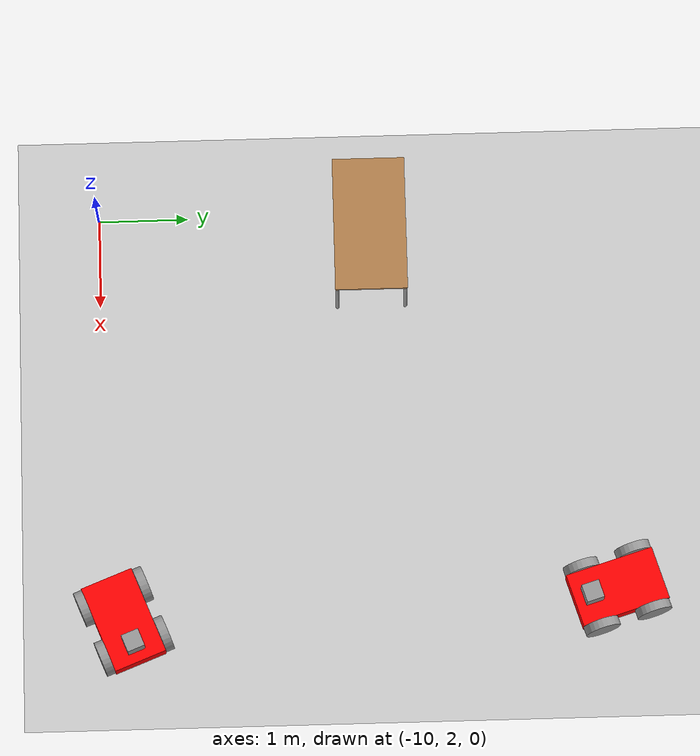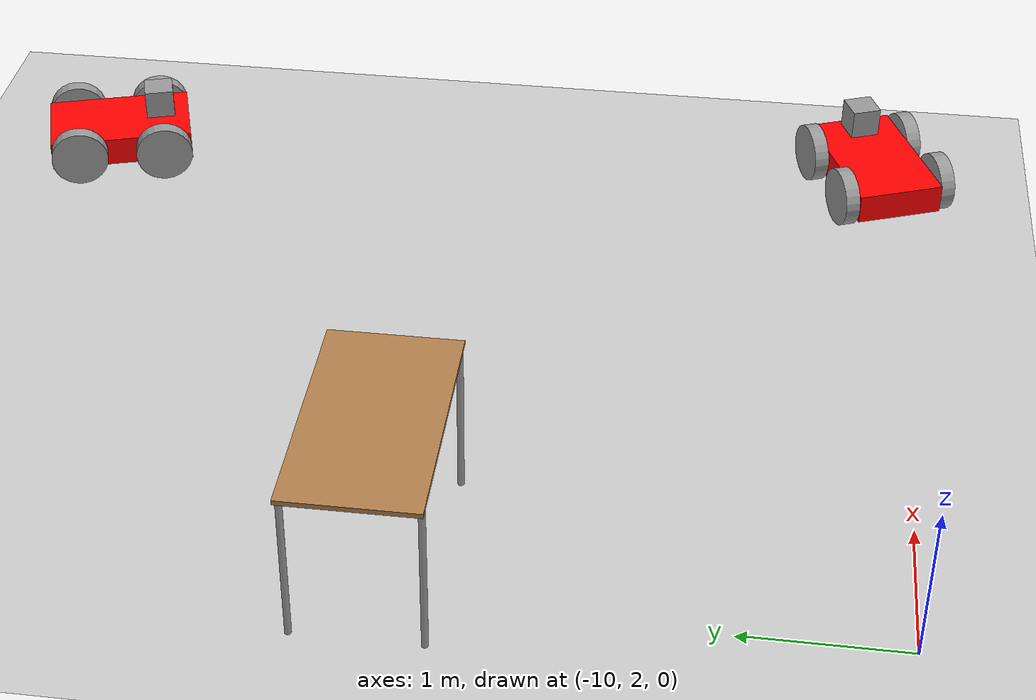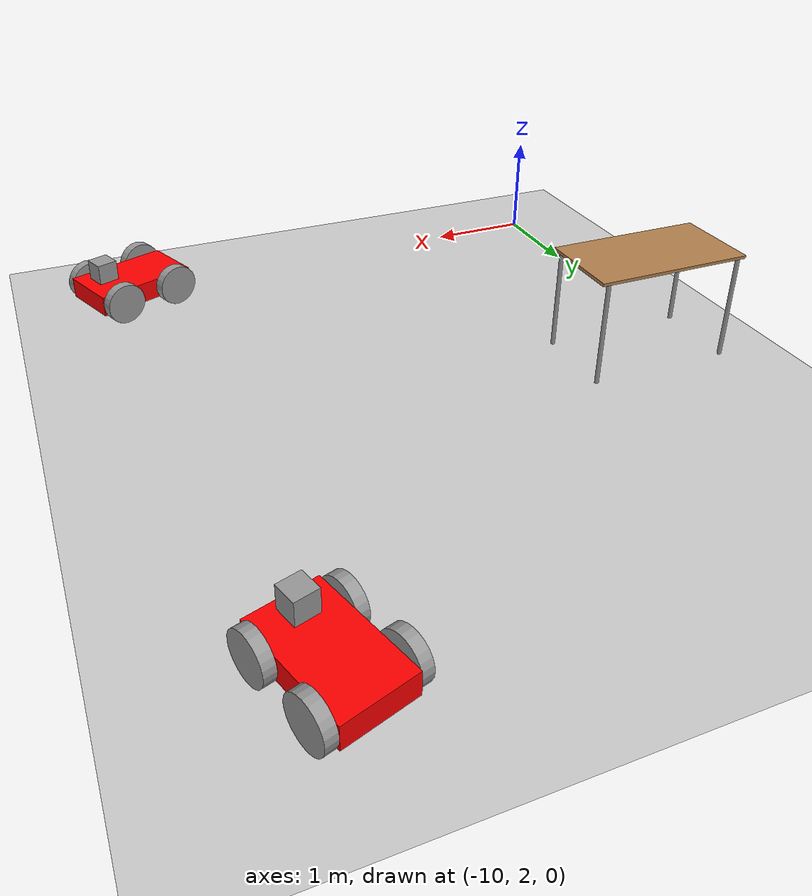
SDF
<sdf version="1.7">
 <world name="default">
  <model name="ground_plane">
   <static>1</static>
   <link name="link">
    <collision name="collision">
     <geometry><plane><normal>0 0 1</normal><size>100 100</size></plane></geometry>
     <surface>
      <contact><collide_bitmask>65535</collide_bitmask></contact>
      <friction><ode><mu>100</mu><mu2>50</mu2></ode></friction>
     </surface>
    </collision>
    <visual name="visual">
     <cast_shadows>0</cast_shadows>
     <geometry><plane><normal>0 0 1</normal><size>100 100</size></plane></geometry>
     <material>
      <script><uri>file://media/materials/scripts/gazebo.material</uri><name>Gazebo/Grey</name></script>
     </material>
    </visual>
   </link>
  </model>
  <model name="table_0">
   <static>1</static>
   <link name="link">
    <collision name="surface">
     <pose>0 0 1 0 -0 0</pose>
     <geometry><box><size>1.5 0.8 0.03</size></box></geometry>
     <surface><friction><ode><mu>0.6</mu><mu2>0.6</mu2></ode></friction></surface>
    </collision>
    <visual name="visual1">
     <pose>0 0 1 0 -0 0</pose>
     <geometry><box><size>1.5 0.8 0.03</size></box></geometry>
     <material>
      <script><uri>file://media/materials/scripts/gazebo.material</uri><name>Gazebo/Wood</name></script>
     </material>
    </visual>
    <collision name="front_left_leg">
     <pose>0.68 0.38 0.5 0 -0 0</pose>
     <geometry><cylinder><radius>0.02</radius><length>1</length></cylinder></geometry>
    </collision>
    <visual name="front_left_leg">
     <pose>0.68 0.38 0.5 0 -0 0</pose>
     <geometry><cylinder><radius>0.02</radius><length>1</length></cylinder></geometry>
     <material>
      <script><uri>file://media/materials/scripts/gazebo.material</uri><name>Gazebo/Grey</name></script>
     </material>
    </visual>
    <collision name="front_right_leg">
     <pose>0.68 -0.38 0.5 0 -0 0</pose>
     <geometry><cylinder><radius>0.02</radius><length>1</length></cylinder></geometry>
    </collision>
    <visual name="front_right_leg">
     <pose>0.68 -0.38 0.5 0 -0 0</pose>
     <geometry><cylinder><radius>0.02</radius><length>1</length></cylinder></geometry>
     <material>
      <script><uri>file://media/materials/scripts/gazebo.material</uri><name>Gazebo/Grey</name></script>
     </material>
    </visual>
    <collision name="back_right_leg">
     <pose>-0.68 -0.38 0.5 0 -0 0</pose>
     <geometry><cylinder><radius>0.02</radius><length>1</length></cylinder></geometry>
    </collision>
    <visual name="back_right_leg">
     <pose>-0.68 -0.38 0.5 0 -0 0</pose>
     <geometry><cylinder><radius>0.02</radius><length>1</length></cylinder></geometry>
     <material>
      <script><uri>file://media/materials/scripts/gazebo.material</uri><name>Gazebo/Grey</name></script>
     </material>
    </visual>
    <collision name="back_left_leg">
     <pose>-0.68 0.38 0.5 0 -0 0</pose>
     <geometry><cylinder><radius>0.02</radius><length>1</length></cylinder></geometry>
    </collision>
    <visual name="back_left_leg">
     <pose>-0.68 0.38 0.5 0 -0 0</pose>
     <geometry><cylinder><radius>0.02</radius><length>1</length></cylinder></geometry>
     <material>
      <script><uri>file://media/materials/scripts/gazebo.material</uri><name>Gazebo/Grey</name></script>
     </material>
    </visual>
   </link>
   <pose>-9.61632 5.04374 0 0 -0 0</pose>
  </model>
  <model name="Normal_Turtlebot">
   <link name="link_0">
    <inertial>
     <mass>1</mass>
     <inertia>
      <ixx>0.166667</ixx>
      <ixy>0</ixy>
      <ixz>0</ixz>
      <iyy>0.166667</iyy>
      <iyz>0</iyz>
      <izz>0.166667</izz>
     </inertia>
    </inertial>
    <pose>0.016667 0 -0.034708 0 -0 0</pose>
    <visual name="visual">
     <geometry><box><size>1 0.6 0.2</size></box></geometry>
     <material>
      <lighting>1</lighting>
      <script><uri>file://media/materials/scripts/gazebo.material</uri><name>Gazebo/Grey</name></script>
      <shader type="pixel"><normal_map>__default__</normal_map></shader>
      <ambient>1 0 0 1</ambient>
      <diffuse>1 0 0 1</diffuse>
      <specular>0.1 0.1 0.1 1</specular>
      <emissive>0 0 0 1</emissive>
     </material>
    </visual>
    <collision name="collision">
     <geometry><box><size>1 0.6 0.2</size></box></geometry>
     <surface>
      <friction>
       <ode><mu>1</mu><mu2>1</mu2><fdir1>0 0 0</fdir1><slip1>0</slip1><slip2>0</slip2></ode>
       <torsional>
        <coefficient>1</coefficient>
        <patch_radius>0</patch_radius>
        <surface_radius>0</surface_radius>
        <use_patch_radius>1</use_patch_radius>
        <ode><slip>0</slip></ode>
       </torsional>
      </friction>
      <bounce><restitution_coefficient>0</restitution_coefficient><threshold>1e+06</threshold></bounce>
      <contact>
       <collide_without_contact>0</collide_without_contact>
       <collide_without_contact_bitmask>1</collide_without_contact_bitmask>
       <collide_bitmask>1</collide_bitmask>
       <ode>
        <soft_cfm>0</soft_cfm>
        <soft_erp>0.2</soft_erp>
        <kp>1e+13</kp>
        <kd>1</kd>
        <max_vel>0.01</max_vel>
        <min_depth>0</min_depth>
       </ode>
       <bullet>
        <split_impulse>1</split_impulse>
        <split_impulse_penetration_threshold>-0.01</split_impulse_penetration_threshold>
        <soft_cfm>0</soft_cfm>
        <soft_erp>0.2</soft_erp>
        <kp>1e+13</kp>
        <kd>1</kd>
       </bullet>
      </contact>
     </surface>
    </collision>
   </link>
   <link name="link_1">
    <inertial>
     <mass>1</mass>
     <inertia><ixx>0.145833</ixx><ixy>0</ixy><ixz>0</ixz><iyy>0.145833</iyy><iyz>0</iyz><izz>0.125</izz></inertia>
    </inertial>
    <pose>-0.283333 -0.350019 -0.014712 1.5707 -0 0</pose>
    <visual name="visual">
     <geometry><cylinder><radius>0.2</radius><length>0.1</length></cylinder></geometry>
     <material>
      <lighting>1</lighting>
      <script><uri>file://media/materials/scripts/gazebo.material</uri><name>Gazebo/Grey</name></script>
      <shader type="pixel"><normal_map>__default__</normal_map></shader>
      <ambient>0.3 0.3 0.3 1</ambient>
      <diffuse>0.7 0.7 0.7 1</diffuse>
      <specular>0.01 0.01 0.01 1</specular>
      <emissive>0 0 0 1</emissive>
     </material>
    </visual>
    <collision name="collision">
     <geometry><cylinder><radius>0.2</radius><length>0.1</length></cylinder></geometry>
     <surface>
      <friction>
       <ode><mu>1</mu><mu2>1</mu2><fdir1>0 0 0</fdir1><slip1>0</slip1><slip2>0</slip2></ode>
       <torsional>
        <coefficient>1</coefficient>
        <patch_radius>0</patch_radius>
        <surface_radius>0</surface_radius>
        <use_patch_radius>1</use_patch_radius>
        <ode><slip>0</slip></ode>
       </torsional>
      </friction>
      <bounce><restitution_coefficient>0</restitution_coefficient><threshold>1e+06</threshold></bounce>
      <contact>
       <collide_without_contact>0</collide_without_contact>
       <collide_without_contact_bitmask>1</collide_without_contact_bitmask>
       <collide_bitmask>1</collide_bitmask>
       <ode>
        <soft_cfm>0</soft_cfm>
        <soft_erp>0.2</soft_erp>
        <kp>1e+13</kp>
        <kd>1</kd>
        <max_vel>0.01</max_vel>
        <min_depth>0</min_depth>
       </ode>
       <bullet>
        <split_impulse>1</split_impulse>
        <split_impulse_penetration_threshold>-0.01</split_impulse_penetration_threshold>
        <soft_cfm>0</soft_cfm>
        <soft_erp>0.2</soft_erp>
        <kp>1e+13</kp>
        <kd>1</kd>
       </bullet>
      </contact>
     </surface>
    </collision>
   </link>
   <link name="link_1_clone">
    <inertial>
     <mass>1</mass>
     <inertia><ixx>0.145833</ixx><ixy>0</ixy><ixz>0</ixz><iyy>0.145833</iyy><iyz>0</iyz><izz>0.125</izz></inertia>
    </inertial>
    <pose>-0.283333 0.350019 -0.034708 1.5707 -0 0</pose>
    <visual name="visual">
     <geometry><cylinder><radius>0.2</radius><length>0.1</length></cylinder></geometry>
     <material>
      <lighting>1</lighting>
      <script><uri>file://media/materials/scripts/gazebo.material</uri><name>Gazebo/Grey</name></script>
      <shader type="pixel"><normal_map>__default__</normal_map></shader>
      <ambient>0.3 0.3 0.3 1</ambient>
      <diffuse>0.7 0.7 0.7 1</diffuse>
      <specular>0.01 0.01 0.01 1</specular>
      <emissive>0 0 0 1</emissive>
     </material>
    </visual>
    <collision name="collision">
     <geometry><cylinder><radius>0.2</radius><length>0.1</length></cylinder></geometry>
     <surface>
      <friction>
       <ode><mu>1</mu><mu2>1</mu2><fdir1>0 0 0</fdir1><slip1>0</slip1><slip2>0</slip2></ode>
       <torsional>
        <coefficient>1</coefficient>
        <patch_radius>0</patch_radius>
        <surface_radius>0</surface_radius>
        <use_patch_radius>1</use_patch_radius>
        <ode><slip>0</slip></ode>
       </torsional>
      </friction>
      <bounce><restitution_coefficient>0</restitution_coefficient><threshold>1e+06</threshold></bounce>
      <contact>
       <collide_without_contact>0</collide_without_contact>
       <collide_without_contact_bitmask>1</collide_without_contact_bitmask>
       <collide_bitmask>1</collide_bitmask>
       <ode>
        <soft_cfm>0</soft_cfm>
        <soft_erp>0.2</soft_erp>
        <kp>1e+13</kp>
        <kd>1</kd>
        <max_vel>0.01</max_vel>
        <min_depth>0</min_depth>
       </ode>
       <bullet>
        <split_impulse>1</split_impulse>
        <split_impulse_penetration_threshold>-0.01</split_impulse_penetration_threshold>
        <soft_cfm>0</soft_cfm>
        <soft_erp>0.2</soft_erp>
        <kp>1e+13</kp>
        <kd>1</kd>
       </bullet>
      </contact>
     </surface>
    </collision>
   </link>
   <link name="link_1_clone_0">
    <inertial>
     <mass>1</mass>
     <inertia><ixx>0.145833</ixx><ixy>0</ixy><ixz>0</ixz><iyy>0.145833</iyy><iyz>0</iyz><izz>0.125</izz></inertia>
    </inertial>
    <pose>0.316667 0.350019 -0.034708 1.5707 -0 0</pose>
    <visual name="visual">
     <geometry><cylinder><radius>0.2</radius><length>0.1</length></cylinder></geometry>
     <material>
      <lighting>1</lighting>
      <script><uri>file://media/materials/scripts/gazebo.material</uri><name>Gazebo/Grey</name></script>
      <shader type="pixel"><normal_map>__default__</normal_map></shader>
      <ambient>0.3 0.3 0.3 1</ambient>
      <diffuse>0.7 0.7 0.7 1</diffuse>
      <specular>0.01 0.01 0.01 1</specular>
      <emissive>0 0 0 1</emissive>
     </material>
    </visual>
    <collision name="collision">
     <geometry><cylinder><radius>0.2</radius><length>0.1</length></cylinder></geometry>
     <surface>
      <friction>
       <ode><mu>1</mu><mu2>1</mu2><fdir1>0 0 0</fdir1><slip1>0</slip1><slip2>0</slip2></ode>
       <torsional>
        <coefficient>1</coefficient>
        <patch_radius>0</patch_radius>
        <surface_radius>0</surface_radius>
        <use_patch_radius>1</use_patch_radius>
        <ode><slip>0</slip></ode>
       </torsional>
      </friction>
      <bounce><restitution_coefficient>0</restitution_coefficient><threshold>1e+06</threshold></bounce>
      <contact>
       <collide_without_contact>0</collide_without_contact>
       <collide_without_contact_bitmask>1</collide_without_contact_bitmask>
       <collide_bitmask>1</collide_bitmask>
       <ode>
        <soft_cfm>0</soft_cfm>
        <soft_erp>0.2</soft_erp>
        <kp>1e+13</kp>
        <kd>1</kd>
        <max_vel>0.01</max_vel>
        <min_depth>0</min_depth>
       </ode>
       <bullet>
        <split_impulse>1</split_impulse>
        <split_impulse_penetration_threshold>-0.01</split_impulse_penetration_threshold>
        <soft_cfm>0</soft_cfm>
        <soft_erp>0.2</soft_erp>
        <kp>1e+13</kp>
        <kd>1</kd>
       </bullet>
      </contact>
     </surface>
    </collision>
   </link>
   <link name="link_1_clone_1">
    <inertial>
     <mass>1</mass>
     <inertia><ixx>0.145833</ixx><ixy>0</ixy><ixz>0</ixz><iyy>0.145833</iyy><iyz>0</iyz><izz>0.125</izz></inertia>
    </inertial>
    <pose>0.316667 -0.350019 -0.034708 1.5707 -0 0</pose>
    <visual name="visual">
     <geometry><cylinder><radius>0.2</radius><length>0.1</length></cylinder></geometry>
     <material>
      <lighting>1</lighting>
      <script><uri>file://media/materials/scripts/gazebo.material</uri><name>Gazebo/Grey</name></script>
      <shader type="pixel"><normal_map>__default__</normal_map></shader>
      <ambient>0.3 0.3 0.3 1</ambient>
      <diffuse>0.7 0.7 0.7 1</diffuse>
      <specular>0.01 0.01 0.01 1</specular>
      <emissive>0 0 0 1</emissive>
     </material>
    </visual>
    <collision name="collision">
     <geometry><cylinder><radius>0.2</radius><length>0.1</length></cylinder></geometry>
     <surface>
      <friction>
       <ode><mu>1</mu><mu2>1</mu2><fdir1>0 0 0</fdir1><slip1>0</slip1><slip2>0</slip2></ode>
       <torsional>
        <coefficient>1</coefficient>
        <patch_radius>0</patch_radius>
        <surface_radius>0</surface_radius>
        <use_patch_radius>1</use_patch_radius>
        <ode><slip>0</slip></ode>
       </torsional>
      </friction>
      <bounce><restitution_coefficient>0</restitution_coefficient><threshold>1e+06</threshold></bounce>
      <contact>
       <collide_without_contact>0</collide_without_contact>
       <collide_without_contact_bitmask>1</collide_without_contact_bitmask>
       <collide_bitmask>1</collide_bitmask>
       <ode>
        <soft_cfm>0</soft_cfm>
        <soft_erp>0.2</soft_erp>
        <kp>1e+13</kp>
        <kd>1</kd>
        <max_vel>0.01</max_vel>
        <min_depth>0</min_depth>
       </ode>
       <bullet>
        <split_impulse>1</split_impulse>
        <split_impulse_penetration_threshold>-0.01</split_impulse_penetration_threshold>
        <soft_cfm>0</soft_cfm>
        <soft_erp>0.2</soft_erp>
        <kp>1e+13</kp>
        <kd>1</kd>
       </bullet>
      </contact>
     </surface>
    </collision>
   </link>
   <link name="link_2">
    <inertial>
     <mass>0.0103468</mass>
     <inertia>
      <ixx>7.075e-05</ixx>
      <ixy>0</ixy>
      <ixz>0</ixz>
      <iyy>9.168e-05</iyy>
      <iyz>0</iyz>
      <izz>8.896e-05</izz>
     </inertia>
    </inertial>
    <pose>0.316667 2.2e-05 0.205409 0 -0 0</pose>
    <visual name="visual">
     <geometry><box><size>0.2 0.2 0.2</size></box></geometry>
     <material>
      <lighting>1</lighting>
      <script><uri>file://media/materials/scripts/gazebo.material</uri><name>Gazebo/Grey</name></script>
      <shader type="pixel"><normal_map>__default__</normal_map></shader>
      <ambient>0.3 0.3 0.3 1</ambient>
      <diffuse>0.7 0.7 0.7 1</diffuse>
      <specular>0.01 0.01 0.01 1</specular>
      <emissive>0 0 0 1</emissive>
     </material>
    </visual>
    <collision name="collision">
     <geometry><box><size>0.2 0.2 0.2</size></box></geometry>
     <surface>
      <friction>
       <ode><mu>1</mu><mu2>1</mu2><fdir1>0 0 0</fdir1><slip1>0</slip1><slip2>0</slip2></ode>
       <torsional>
        <coefficient>1</coefficient>
        <patch_radius>0</patch_radius>
        <surface_radius>0</surface_radius>
        <use_patch_radius>1</use_patch_radius>
        <ode><slip>0</slip></ode>
       </torsional>
      </friction>
      <bounce><restitution_coefficient>0</restitution_coefficient><threshold>1e+06</threshold></bounce>
      <contact>
       <collide_without_contact>0</collide_without_contact>
       <collide_without_contact_bitmask>1</collide_without_contact_bitmask>
       <collide_bitmask>1</collide_bitmask>
       <ode>
        <soft_cfm>0</soft_cfm>
        <soft_erp>0.2</soft_erp>
        <kp>1e+13</kp>
        <kd>1</kd>
        <max_vel>0.01</max_vel>
        <min_depth>0</min_depth>
       </ode>
       <bullet>
        <split_impulse>1</split_impulse>
        <split_impulse_penetration_threshold>-0.01</split_impulse_penetration_threshold>
        <soft_cfm>0</soft_cfm>
        <soft_erp>0.2</soft_erp>
        <kp>1e+13</kp>
        <kd>1</kd>
       </bullet>
      </contact>
     </surface>
    </collision>
   </link>
   <joint name="link_0_JOINT_0_0" type="fixed">
    <parent>link_0</parent>
    <child>link_2</child>
    <pose>0 0 0 -0.01 0 0</pose>
    <physics>
     <ode><limit><cfm>0</cfm><erp>0.2</erp></limit><suspension><cfm>0</cfm><erp>0.2</erp></suspension></ode>
    </physics>
   </joint>
   <joint name="link_0_JOINT_0" type="revolute">
    <parent>link_0</parent>
    <child>link_1</child>
    <axis>
     <xyz>0 0 1</xyz>
     <limit>
      <lower>-1.79769e+308</lower>
      <upper>1.79769e+308</upper>
      <effort>-1</effort>
      <velocity>-1</velocity>
     </limit>
     <dynamics>
      <spring_reference>0</spring_reference>
      <spring_stiffness>0</spring_stiffness>
      <damping>0</damping>
      <friction>0</friction>
     </dynamics>
    </axis>
    <physics>
     <ode><limit><cfm>0</cfm><erp>0.2</erp></limit><suspension><cfm>0</cfm><erp>0.2</erp></suspension></ode>
    </physics>
   </joint>
   <joint name="link_0_JOINT_1" type="revolute">
    <parent>link_0</parent>
    <child>link_1_clone_1</child>
    <axis>
     <xyz>0 0 1</xyz>
     <limit>
      <lower>-1.79769e+308</lower>
      <upper>1.79769e+308</upper>
      <effort>-1</effort>
      <velocity>-1</velocity>
     </limit>
     <dynamics>
      <spring_reference>0</spring_reference>
      <spring_stiffness>0</spring_stiffness>
      <damping>0</damping>
      <friction>0</friction>
     </dynamics>
    </axis>
    <physics>
     <ode><limit><cfm>0</cfm><erp>0.2</erp></limit><suspension><cfm>0</cfm><erp>0.2</erp></suspension></ode>
    </physics>
   </joint>
   <joint name="link_0_JOINT_2" type="revolute">
    <parent>link_0</parent>
    <child>link_1_clone</child>
    <axis>
     <xyz>0 0 1</xyz>
     <limit>
      <lower>-1.79769e+308</lower>
      <upper>1.79769e+308</upper>
      <effort>-1</effort>
      <velocity>-1</velocity>
     </limit>
     <dynamics>
      <spring_reference>0</spring_reference>
      <spring_stiffness>0</spring_stiffness>
      <damping>0</damping>
      <friction>0</friction>
     </dynamics>
    </axis>
    <physics>
     <ode><limit><cfm>0</cfm><erp>0.2</erp></limit><suspension><cfm>0</cfm><erp>0.2</erp></suspension></ode>
    </physics>
   </joint>
   <joint name="link_0_JOINT_3" type="revolute">
    <parent>link_0</parent>
    <child>link_1_clone_0</child>
    <axis>
     <xyz>0 0 1</xyz>
     <limit>
      <lower>-1.79769e+308</lower>
      <upper>1.79769e+308</upper>
      <effort>-1</effort>
      <velocity>-1</velocity>
     </limit>
     <dynamics>
      <spring_reference>0</spring_reference>
      <spring_stiffness>0</spring_stiffness>
      <damping>0</damping>
      <friction>0</friction>
     </dynamics>
    </axis>
    <physics>
     <ode><limit><cfm>0</cfm><erp>0.2</erp></limit><suspension><cfm>0</cfm><erp>0.2</erp></suspension></ode>
    </physics>
   </joint>
   <static>0</static>
   <pose>-5.38094 2.20899 0.2347 9.8e-05 -0.000117 0.37514</pose>
  </model>
  <model name="Normal_Turtlebot_clone">
   <link name="link_0">
    <inertial>
     <mass>1</mass>
     <inertia>
      <ixx>0.166667</ixx>
      <ixy>0</ixy>
      <ixz>0</ixz>
      <iyy>0.166667</iyy>
      <iyz>0</iyz>
      <izz>0.166667</izz>
     </inertia>
    </inertial>
    <pose>0.016667 0 -0.034708 0 -0 0</pose>
    <visual name="visual">
     <geometry><box><size>1 0.6 0.2</size></box></geometry>
     <material>
      <lighting>1</lighting>
      <script><uri>file://media/materials/scripts/gazebo.material</uri><name>Gazebo/Grey</name></script>
      <shader type="pixel"><normal_map>__default__</normal_map></shader>
      <ambient>1 0 0 1</ambient>
      <diffuse>1 0 0 1</diffuse>
      <specular>0.1 0.1 0.1 1</specular>
      <emissive>0 0 0 1</emissive>
     </material>
    </visual>
    <collision name="collision">
     <geometry><box><size>1 0.6 0.2</size></box></geometry>
     <surface>
      <friction>
       <ode><mu>1</mu><mu2>1</mu2><fdir1>0 0 0</fdir1><slip1>0</slip1><slip2>0</slip2></ode>
       <torsional>
        <coefficient>1</coefficient>
        <patch_radius>0</patch_radius>
        <surface_radius>0</surface_radius>
        <use_patch_radius>1</use_patch_radius>
        <ode><slip>0</slip></ode>
       </torsional>
      </friction>
      <bounce><restitution_coefficient>0</restitution_coefficient><threshold>1e+06</threshold></bounce>
      <contact>
       <collide_without_contact>0</collide_without_contact>
       <collide_without_contact_bitmask>1</collide_without_contact_bitmask>
       <collide_bitmask>1</collide_bitmask>
       <ode>
        <soft_cfm>0</soft_cfm>
        <soft_erp>0.2</soft_erp>
        <kp>1e+13</kp>
        <kd>1</kd>
        <max_vel>0.01</max_vel>
        <min_depth>0</min_depth>
       </ode>
       <bullet>
        <split_impulse>1</split_impulse>
        <split_impulse_penetration_threshold>-0.01</split_impulse_penetration_threshold>
        <soft_cfm>0</soft_cfm>
        <soft_erp>0.2</soft_erp>
        <kp>1e+13</kp>
        <kd>1</kd>
       </bullet>
      </contact>
     </surface>
    </collision>
   </link>
   <link name="link_1">
    <inertial>
     <mass>1</mass>
     <inertia><ixx>0.145833</ixx><ixy>0</ixy><ixz>0</ixz><iyy>0.145833</iyy><iyz>0</iyz><izz>0.125</izz></inertia>
    </inertial>
    <pose>-0.283333 -0.350019 -0.014712 1.5707 -0 0</pose>
    <visual name="visual">
     <geometry><cylinder><radius>0.2</radius><length>0.1</length></cylinder></geometry>
     <material>
      <lighting>1</lighting>
      <script><uri>file://media/materials/scripts/gazebo.material</uri><name>Gazebo/Grey</name></script>
      <shader type="pixel"><normal_map>__default__</normal_map></shader>
      <ambient>0.3 0.3 0.3 1</ambient>
      <diffuse>0.7 0.7 0.7 1</diffuse>
      <specular>0.01 0.01 0.01 1</specular>
      <emissive>0 0 0 1</emissive>
     </material>
    </visual>
    <collision name="collision">
     <geometry><cylinder><radius>0.2</radius><length>0.1</length></cylinder></geometry>
     <surface>
      <friction>
       <ode><mu>1</mu><mu2>1</mu2><fdir1>0 0 0</fdir1><slip1>0</slip1><slip2>0</slip2></ode>
       <torsional>
        <coefficient>1</coefficient>
        <patch_radius>0</patch_radius>
        <surface_radius>0</surface_radius>
        <use_patch_radius>1</use_patch_radius>
        <ode><slip>0</slip></ode>
       </torsional>
      </friction>
      <bounce><restitution_coefficient>0</restitution_coefficient><threshold>1e+06</threshold></bounce>
      <contact>
       <collide_without_contact>0</collide_without_contact>
       <collide_without_contact_bitmask>1</collide_without_contact_bitmask>
       <collide_bitmask>1</collide_bitmask>
       <ode>
        <soft_cfm>0</soft_cfm>
        <soft_erp>0.2</soft_erp>
        <kp>1e+13</kp>
        <kd>1</kd>
        <max_vel>0.01</max_vel>
        <min_depth>0</min_depth>
       </ode>
       <bullet>
        <split_impulse>1</split_impulse>
        <split_impulse_penetration_threshold>-0.01</split_impulse_penetration_threshold>
        <soft_cfm>0</soft_cfm>
        <soft_erp>0.2</soft_erp>
        <kp>1e+13</kp>
        <kd>1</kd>
       </bullet>
      </contact>
     </surface>
    </collision>
   </link>
   <link name="link_1_clone">
    <inertial>
     <mass>1</mass>
     <inertia><ixx>0.145833</ixx><ixy>0</ixy><ixz>0</ixz><iyy>0.145833</iyy><iyz>0</iyz><izz>0.125</izz></inertia>
    </inertial>
    <pose>-0.283333 0.350019 -0.034708 1.5707 -0 0</pose>
    <visual name="visual">
     <geometry><cylinder><radius>0.2</radius><length>0.1</length></cylinder></geometry>
     <material>
      <lighting>1</lighting>
      <script><uri>file://media/materials/scripts/gazebo.material</uri><name>Gazebo/Grey</name></script>
      <shader type="pixel"><normal_map>__default__</normal_map></shader>
      <ambient>0.3 0.3 0.3 1</ambient>
      <diffuse>0.7 0.7 0.7 1</diffuse>
      <specular>0.01 0.01 0.01 1</specular>
      <emissive>0 0 0 1</emissive>
     </material>
    </visual>
    <collision name="collision">
     <geometry><cylinder><radius>0.2</radius><length>0.1</length></cylinder></geometry>
     <surface>
      <friction>
       <ode><mu>1</mu><mu2>1</mu2><fdir1>0 0 0</fdir1><slip1>0</slip1><slip2>0</slip2></ode>
       <torsional>
        <coefficient>1</coefficient>
        <patch_radius>0</patch_radius>
        <surface_radius>0</surface_radius>
        <use_patch_radius>1</use_patch_radius>
        <ode><slip>0</slip></ode>
       </torsional>
      </friction>
      <bounce><restitution_coefficient>0</restitution_coefficient><threshold>1e+06</threshold></bounce>
      <contact>
       <collide_without_contact>0</collide_without_contact>
       <collide_without_contact_bitmask>1</collide_without_contact_bitmask>
       <collide_bitmask>1</collide_bitmask>
       <ode>
        <soft_cfm>0</soft_cfm>
        <soft_erp>0.2</soft_erp>
        <kp>1e+13</kp>
        <kd>1</kd>
        <max_vel>0.01</max_vel>
        <min_depth>0</min_depth>
       </ode>
       <bullet>
        <split_impulse>1</split_impulse>
        <split_impulse_penetration_threshold>-0.01</split_impulse_penetration_threshold>
        <soft_cfm>0</soft_cfm>
        <soft_erp>0.2</soft_erp>
        <kp>1e+13</kp>
        <kd>1</kd>
       </bullet>
      </contact>
     </surface>
    </collision>
   </link>
   <link name="link_1_clone_0">
    <inertial>
     <mass>1</mass>
     <inertia><ixx>0.145833</ixx><ixy>0</ixy><ixz>0</ixz><iyy>0.145833</iyy><iyz>0</iyz><izz>0.125</izz></inertia>
    </inertial>
    <pose>0.316667 0.350019 -0.034708 1.5707 -0 0</pose>
    <visual name="visual">
     <geometry><cylinder><radius>0.2</radius><length>0.1</length></cylinder></geometry>
     <material>
      <lighting>1</lighting>
      <script><uri>file://media/materials/scripts/gazebo.material</uri><name>Gazebo/Grey</name></script>
      <shader type="pixel"><normal_map>__default__</normal_map></shader>
      <ambient>0.3 0.3 0.3 1</ambient>
      <diffuse>0.7 0.7 0.7 1</diffuse>
      <specular>0.01 0.01 0.01 1</specular>
      <emissive>0 0 0 1</emissive>
     </material>
    </visual>
    <collision name="collision">
     <geometry><cylinder><radius>0.2</radius><length>0.1</length></cylinder></geometry>
     <surface>
      <friction>
       <ode><mu>1</mu><mu2>1</mu2><fdir1>0 0 0</fdir1><slip1>0</slip1><slip2>0</slip2></ode>
       <torsional>
        <coefficient>1</coefficient>
        <patch_radius>0</patch_radius>
        <surface_radius>0</surface_radius>
        <use_patch_radius>1</use_patch_radius>
        <ode><slip>0</slip></ode>
       </torsional>
      </friction>
      <bounce><restitution_coefficient>0</restitution_coefficient><threshold>1e+06</threshold></bounce>
      <contact>
       <collide_without_contact>0</collide_without_contact>
       <collide_without_contact_bitmask>1</collide_without_contact_bitmask>
       <collide_bitmask>1</collide_bitmask>
       <ode>
        <soft_cfm>0</soft_cfm>
        <soft_erp>0.2</soft_erp>
        <kp>1e+13</kp>
        <kd>1</kd>
        <max_vel>0.01</max_vel>
        <min_depth>0</min_depth>
       </ode>
       <bullet>
        <split_impulse>1</split_impulse>
        <split_impulse_penetration_threshold>-0.01</split_impulse_penetration_threshold>
        <soft_cfm>0</soft_cfm>
        <soft_erp>0.2</soft_erp>
        <kp>1e+13</kp>
        <kd>1</kd>
       </bullet>
      </contact>
     </surface>
    </collision>
   </link>
   <link name="link_1_clone_1">
    <inertial>
     <mass>1</mass>
     <inertia><ixx>0.145833</ixx><ixy>0</ixy><ixz>0</ixz><iyy>0.145833</iyy><iyz>0</iyz><izz>0.125</izz></inertia>
    </inertial>
    <pose>0.316667 -0.350019 -0.034708 1.5707 -0 0</pose>
    <visual name="visual">
     <geometry><cylinder><radius>0.2</radius><length>0.1</length></cylinder></geometry>
     <material>
      <lighting>1</lighting>
      <script><uri>file://media/materials/scripts/gazebo.material</uri><name>Gazebo/Grey</name></script>
      <shader type="pixel"><normal_map>__default__</normal_map></shader>
      <ambient>0.3 0.3 0.3 1</ambient>
      <diffuse>0.7 0.7 0.7 1</diffuse>
      <specular>0.01 0.01 0.01 1</specular>
      <emissive>0 0 0 1</emissive>
     </material>
    </visual>
    <collision name="collision">
     <geometry><cylinder><radius>0.2</radius><length>0.1</length></cylinder></geometry>
     <surface>
      <friction>
       <ode><mu>1</mu><mu2>1</mu2><fdir1>0 0 0</fdir1><slip1>0</slip1><slip2>0</slip2></ode>
       <torsional>
        <coefficient>1</coefficient>
        <patch_radius>0</patch_radius>
        <surface_radius>0</surface_radius>
        <use_patch_radius>1</use_patch_radius>
        <ode><slip>0</slip></ode>
       </torsional>
      </friction>
      <bounce><restitution_coefficient>0</restitution_coefficient><threshold>1e+06</threshold></bounce>
      <contact>
       <collide_without_contact>0</collide_without_contact>
       <collide_without_contact_bitmask>1</collide_without_contact_bitmask>
       <collide_bitmask>1</collide_bitmask>
       <ode>
        <soft_cfm>0</soft_cfm>
        <soft_erp>0.2</soft_erp>
        <kp>1e+13</kp>
        <kd>1</kd>
        <max_vel>0.01</max_vel>
        <min_depth>0</min_depth>
       </ode>
       <bullet>
        <split_impulse>1</split_impulse>
        <split_impulse_penetration_threshold>-0.01</split_impulse_penetration_threshold>
        <soft_cfm>0</soft_cfm>
        <soft_erp>0.2</soft_erp>
        <kp>1e+13</kp>
        <kd>1</kd>
       </bullet>
      </contact>
     </surface>
    </collision>
   </link>
   <link name="link_2">
    <inertial>
     <mass>0.0103468</mass>
     <inertia>
      <ixx>7.075e-05</ixx>
      <ixy>0</ixy>
      <ixz>0</ixz>
      <iyy>9.168e-05</iyy>
      <iyz>0</iyz>
      <izz>8.896e-05</izz>
     </inertia>
    </inertial>
    <pose>0.316667 2.2e-05 0.205409 0 -0 0</pose>
    <visual name="visual">
     <geometry><box><size>0.2 0.2 0.2</size></box></geometry>
     <material>
      <lighting>1</lighting>
      <script><uri>file://media/materials/scripts/gazebo.material</uri><name>Gazebo/Grey</name></script>
      <shader type="pixel"><normal_map>__default__</normal_map></shader>
      <ambient>0.3 0.3 0.3 1</ambient>
      <diffuse>0.7 0.7 0.7 1</diffuse>
      <specular>0.01 0.01 0.01 1</specular>
      <emissive>0 0 0 1</emissive>
     </material>
    </visual>
    <collision name="collision">
     <geometry><box><size>0.2 0.2 0.2</size></box></geometry>
     <surface>
      <friction>
       <ode><mu>1</mu><mu2>1</mu2><fdir1>0 0 0</fdir1><slip1>0</slip1><slip2>0</slip2></ode>
       <torsional>
        <coefficient>1</coefficient>
        <patch_radius>0</patch_radius>
        <surface_radius>0</surface_radius>
        <use_patch_radius>1</use_patch_radius>
        <ode><slip>0</slip></ode>
       </torsional>
      </friction>
      <bounce><restitution_coefficient>0</restitution_coefficient><threshold>1e+06</threshold></bounce>
      <contact>
       <collide_without_contact>0</collide_without_contact>
       <collide_without_contact_bitmask>1</collide_without_contact_bitmask>
       <collide_bitmask>1</collide_bitmask>
       <ode>
        <soft_cfm>0</soft_cfm>
        <soft_erp>0.2</soft_erp>
        <kp>1e+13</kp>
        <kd>1</kd>
        <max_vel>0.01</max_vel>
        <min_depth>0</min_depth>
       </ode>
       <bullet>
        <split_impulse>1</split_impulse>
        <split_impulse_penetration_threshold>-0.01</split_impulse_penetration_threshold>
        <soft_cfm>0</soft_cfm>
        <soft_erp>0.2</soft_erp>
        <kp>1e+13</kp>
        <kd>1</kd>
       </bullet>
      </contact>
     </surface>
    </collision>
   </link>
   <joint name="link_0_JOINT_0_0" type="fixed">
    <parent>link_0</parent>
    <child>link_2</child>
    <pose>0 0 0 -0.01 0 0</pose>
    <physics>
     <ode><limit><cfm>0</cfm><erp>0.2</erp></limit><suspension><cfm>0</cfm><erp>0.2</erp></suspension></ode>
    </physics>
   </joint>
   <joint name="link_0_JOINT_0" type="revolute">
    <parent>link_0</parent>
    <child>link_1</child>
    <axis>
     <xyz>0 0 1</xyz>
     <limit>
      <lower>-1.79769e+308</lower>
      <upper>1.79769e+308</upper>
      <effort>-1</effort>
      <velocity>-1</velocity>
     </limit>
     <dynamics>
      <spring_reference>0</spring_reference>
      <spring_stiffness>0</spring_stiffness>
      <damping>0</damping>
      <friction>0</friction>
     </dynamics>
    </axis>
    <physics>
     <ode><limit><cfm>0</cfm><erp>0.2</erp></limit><suspension><cfm>0</cfm><erp>0.2</erp></suspension></ode>
    </physics>
   </joint>
   <joint name="link_0_JOINT_1" type="revolute">
    <parent>link_0</parent>
    <child>link_1_clone_1</child>
    <axis>
     <xyz>0 0 1</xyz>
     <limit>
      <lower>-1.79769e+308</lower>
      <upper>1.79769e+308</upper>
      <effort>-1</effort>
      <velocity>-1</velocity>
     </limit>
     <dynamics>
      <spring_reference>0</spring_reference>
      <spring_stiffness>0</spring_stiffness>
      <damping>0</damping>
      <friction>0</friction>
     </dynamics>
    </axis>
    <physics>
     <ode><limit><cfm>0</cfm><erp>0.2</erp></limit><suspension><cfm>0</cfm><erp>0.2</erp></suspension></ode>
    </physics>
   </joint>
   <joint name="link_0_JOINT_2" type="revolute">
    <parent>link_0</parent>
    <child>link_1_clone</child>
    <axis>
     <xyz>0 0 1</xyz>
     <limit>
      <lower>-1.79769e+308</lower>
      <upper>1.79769e+308</upper>
      <effort>-1</effort>
      <velocity>-1</velocity>
     </limit>
     <dynamics>
      <spring_reference>0</spring_reference>
      <spring_stiffness>0</spring_stiffness>
      <damping>0</damping>
      <friction>0</friction>
     </dynamics>
    </axis>
    <physics>
     <ode><limit><cfm>0</cfm><erp>0.2</erp></limit><suspension><cfm>0</cfm><erp>0.2</erp></suspension></ode>
    </physics>
   </joint>
   <joint name="link_0_JOINT_3" type="revolute">
    <parent>link_0</parent>
    <child>link_1_clone_0</child>
    <axis>
     <xyz>0 0 1</xyz>
     <limit>
      <lower>-1.79769e+308</lower>
      <upper>1.79769e+308</upper>
      <effort>-1</effort>
      <velocity>-1</velocity>
     </limit>
     <dynamics>
      <spring_reference>0</spring_reference>
      <spring_stiffness>0</spring_stiffness>
      <damping>0</damping>
      <friction>0</friction>
     </dynamics>
    </axis>
    <physics>
     <ode><limit><cfm>0</cfm><erp>0.2</erp></limit><suspension><cfm>0</cfm><erp>0.2</erp></suspension></ode>
    </physics>
   </joint>
   <static>0</static>
   <pose>-5.59125 7.68396 0.234702 9.8e-05 -0.000118 -1.27206</pose>
  </model>
 </world>
</sdf>
